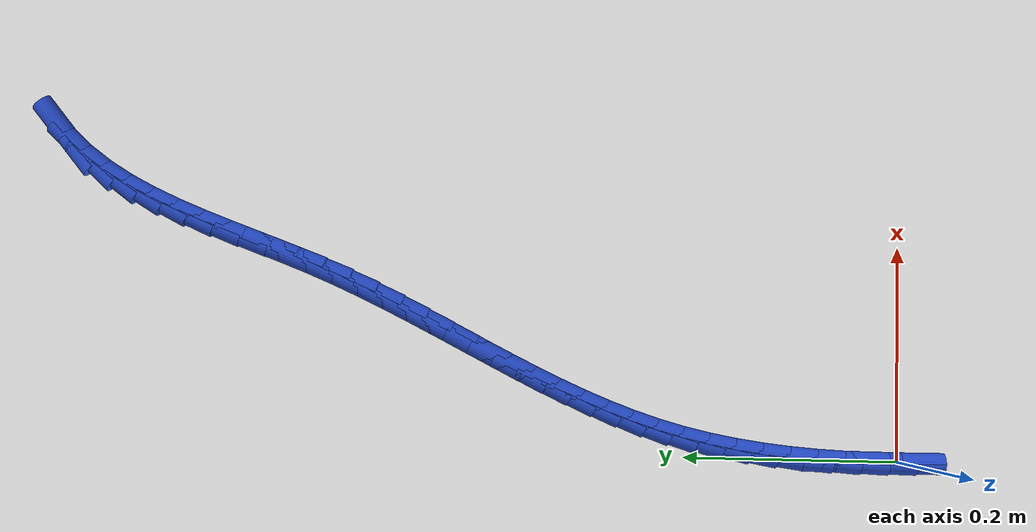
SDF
<sdf version="1.6">
 <world name="default">
  <model name="ground_plane">
   <static>1</static>
   <link name="link">
    <collision name="collision">
     <geometry><plane><normal>0 0 1</normal><size>100 100</size></plane></geometry>
     <surface><friction><ode><mu>100</mu><mu2>50</mu2></ode></friction></surface>
    </collision>
    <visual name="visual">
     <cast_shadows>0</cast_shadows>
     <geometry><plane><normal>0 0 1</normal><size>100 100</size></plane></geometry>
     <material>
      <script><uri>file://media/materials/scripts/gazebo.material</uri><name>Gazebo/WhiteGlow</name></script>
     </material>
    </visual>
   </link>
  </model>
  <model name="line">
   <link name="link_0">
    <pose>5.421010862427522e-18 1.3877787807814457e-17 0.01 0 1.57 -1.5659382603258258</pose>
    <collision name="collision">
     <geometry><cylinder><radius>0.01</radius><length>0.08</length></cylinder></geometry>
    </collision>
    <visual name="visual">
     <material>
      <script><name>Gazebo/Blue</name><uri>file://media/materials/scripts/gazebo.material</uri></script>
     </material>
     <geometry><cylinder><radius>0.01</radius><length>0.08</length></cylinder></geometry>
    </visual>
   </link>
   <link name="link_1">
    <pose>-0.00012448770193607386 0.02562474667447096 0.01 0 1.57 1.550838066038636</pose>
    <collision name="collision">
     <geometry><cylinder><radius>0.01</radius><length>0.08</length></cylinder></geometry>
    </collision>
    <visual name="visual">
     <material>
      <script><name>Gazebo/Blue</name><uri>file://media/materials/scripts/gazebo.material</uri></script>
     </material>
     <geometry><cylinder><radius>0.01</radius><length>0.08</length></cylinder></geometry>
    </visual>
   </link>
   <link name="link_2">
    <pose>0.0003884079028893683 0.051319746270860674 0.01 0 1.57 1.523754809734453</pose>
    <collision name="collision">
     <geometry><cylinder><radius>0.01</radius><length>0.08</length></cylinder></geometry>
    </collision>
    <visual name="visual">
     <material>
      <script><name>Gazebo/Blue</name><uri>file://media/materials/scripts/gazebo.material</uri></script>
     </material>
     <geometry><cylinder><radius>0.01</radius><length>0.08</length></cylinder></geometry>
    </visual>
   </link>
   <link name="link_3">
    <pose>0.0015977780576189502 0.07700935037230285 0.01 0 1.57 1.4942167240908684</pose>
    <collision name="collision">
     <geometry><cylinder><radius>0.01</radius><length>0.08</length></cylinder></geometry>
    </collision>
    <visual name="visual">
     <material>
      <script><name>Gazebo/Blue</name><uri>file://media/materials/scripts/gazebo.material</uri></script>
     </material>
     <geometry><cylinder><radius>0.01</radius><length>0.08</length></cylinder></geometry>
    </visual>
   </link>
   <link name="link_4">
    <pose>0.0035627140053952995 0.10261791056193133 0.01 0 1.57 1.4620176359149086</pose>
    <collision name="collision">
     <geometry><cylinder><radius>0.01</radius><length>0.08</length></cylinder></geometry>
    </collision>
    <visual name="visual">
     <material>
      <script><name>Gazebo/Blue</name><uri>file://media/materials/scripts/gazebo.material</uri></script>
     </material>
     <geometry><cylinder><radius>0.01</radius><length>0.08</length></cylinder></geometry>
    </visual>
   </link>
   <link name="link_5">
    <pose>0.006342306989361036 0.12806977842287975 0.01 0 1.57 1.4269354494937865</pose>
    <collision name="collision">
     <geometry><cylinder><radius>0.01</radius><length>0.08</length></cylinder></geometry>
    </collision>
    <visual name="visual">
     <material>
      <script><name>Gazebo/Blue</name><uri>file://media/materials/scripts/gazebo.material</uri></script>
     </material>
     <geometry><cylinder><radius>0.01</radius><length>0.08</length></cylinder></geometry>
    </visual>
   </link>
   <link name="link_6">
    <pose>0.009995648252658779 0.15328930553828193 0.01 0 1.57 1.3887362121927387</pose>
    <collision name="collision">
     <geometry><cylinder><radius>0.01</radius><length>0.08</length></cylinder></geometry>
    </collision>
    <visual name="visual">
     <material>
      <script><name>Gazebo/Blue</name><uri>file://media/materials/scripts/gazebo.material</uri></script>
     </material>
     <geometry><cylinder><radius>0.01</radius><length>0.08</length></cylinder></geometry>
    </visual>
   </link>
   <link name="link_7">
    <pose>0.014581829038431155 0.17820084349127158 0.01 0 1.57 1.34718060379681</pose>
    <collision name="collision">
     <geometry><cylinder><radius>0.01</radius><length>0.08</length></cylinder></geometry>
    </collision>
    <visual name="visual">
     <material>
      <script><name>Gazebo/Blue</name><uri>file://media/materials/scripts/gazebo.material</uri></script>
     </material>
     <geometry><cylinder><radius>0.01</radius><length>0.08</length></cylinder></geometry>
    </visual>
   </link>
   <link name="link_8">
    <pose>0.02015994058982078 0.20272874386498246 0.01 0 1.57 1.30220337523249</pose>
    <collision name="collision">
     <geometry><cylinder><radius>0.01</radius><length>0.08</length></cylinder></geometry>
    </collision>
    <visual name="visual">
     <material>
      <script><name>Gazebo/Blue</name><uri>file://media/materials/scripts/gazebo.material</uri></script>
     </material>
     <geometry><cylinder><radius>0.01</radius><length>0.08</length></cylinder></geometry>
    </visual>
   </link>
   <link name="link_9">
    <pose>0.02678553320749392 0.2268004582328669 0.01 0 1.57 1.2577323411462435</pose>
    <collision name="collision">
     <geometry><cylinder><radius>0.01</radius><length>0.08</length></cylinder></geometry>
    </collision>
    <visual name="visual">
     <material>
      <script><name>Gazebo/Blue</name><uri>file://media/materials/scripts/gazebo.material</uri></script>
     </material>
     <geometry><cylinder><radius>0.01</radius><length>0.08</length></cylinder></geometry>
    </visual>
   </link>
   <link name="link_10">
    <pose>0.03443036054978534 0.2504167996481787 0.01 0 1.57 1.2181870109696322</pose>
    <collision name="collision">
     <geometry><cylinder><radius>0.01</radius><length>0.08</length></cylinder></geometry>
    </collision>
    <visual name="visual">
     <material>
      <script><name>Gazebo/Blue</name><uri>file://media/materials/scripts/gazebo.material</uri></script>
     </material>
     <geometry><cylinder><radius>0.01</radius><length>0.08</length></cylinder></geometry>
    </visual>
   </link>
   <link name="link_11">
    <pose>0.042981050054630425 0.2736531066502133 0.01 0 1.57 1.184088666032764</pose>
    <collision name="collision">
     <geometry><cylinder><radius>0.01</radius><length>0.08</length></cylinder></geometry>
    </collision>
    <visual name="visual">
     <material>
      <script><name>Gazebo/Blue</name><uri>file://media/materials/scripts/gazebo.material</uri></script>
     </material>
     <geometry><cylinder><radius>0.01</radius><length>0.08</length></cylinder></geometry>
    </visual>
   </link>
   <link name="link_12">
    <pose>0.05232042228121659 0.29658805058791815 0.01 0 1.57 1.15564467206756</pose>
    <collision name="collision">
     <geometry><cylinder><radius>0.01</radius><length>0.08</length></cylinder></geometry>
    </collision>
    <visual name="visual">
     <material>
      <script><name>Gazebo/Blue</name><uri>file://media/materials/scripts/gazebo.material</uri></script>
     </material>
     <geometry><cylinder><radius>0.01</radius><length>0.08</length></cylinder></geometry>
    </visual>
   </link>
   <link name="link_13">
    <pose>0.06233129778873132 0.3193003028102408 0.01 0 1.57 1.1329560969378643</pose>
    <collision name="collision">
     <geometry><cylinder><radius>0.01</radius><length>0.08</length></cylinder></geometry>
    </collision>
    <visual name="visual">
     <material>
      <script><name>Gazebo/Blue</name><uri>file://media/materials/scripts/gazebo.material</uri></script>
     </material>
     <geometry><cylinder><radius>0.01</radius><length>0.08</length></cylinder></geometry>
    </visual>
   </link>
   <link name="link_14">
    <pose>0.072896497136362 0.3418685346661286 0.01 0 1.57 1.1160435405415503</pose>
    <collision name="collision">
     <geometry><cylinder><radius>0.01</radius><length>0.08</length></cylinder></geometry>
    </collision>
    <visual name="visual">
     <material>
      <script><name>Gazebo/Blue</name><uri>file://media/materials/scripts/gazebo.material</uri></script>
     </material>
     <geometry><cylinder><radius>0.01</radius><length>0.08</length></cylinder></geometry>
    </visual>
   </link>
   <link name="link_15">
    <pose>0.08389884088329615 0.3643714175045291 0.01 0 1.57 1.1048700795377384</pose>
    <collision name="collision">
     <geometry><cylinder><radius>0.01</radius><length>0.08</length></cylinder></geometry>
    </collision>
    <visual name="visual">
     <material>
      <script><name>Gazebo/Blue</name><uri>file://media/materials/scripts/gazebo.material</uri></script>
     </material>
     <geometry><cylinder><radius>0.01</radius><length>0.08</length></cylinder></geometry>
    </visual>
   </link>
   <link name="link_16">
    <pose>0.09522114958872116 0.3868876226743898 0.01 0 1.57 1.0993593445898155</pose>
    <collision name="collision">
     <geometry><cylinder><radius>0.01</radius><length>0.08</length></cylinder></geometry>
    </collision>
    <visual name="visual">
     <material>
      <script><name>Gazebo/Blue</name><uri>file://media/materials/scripts/gazebo.material</uri></script>
     </material>
     <geometry><cylinder><radius>0.01</radius><length>0.08</length></cylinder></geometry>
    </visual>
   </link>
   <link name="link_17">
    <pose>0.10674624381182446 0.4094958215246581 0.01 0 1.57 1.0994079437964333</pose>
    <collision name="collision">
     <geometry><cylinder><radius>0.01</radius><length>0.08</length></cylinder></geometry>
    </collision>
    <visual name="visual">
     <material>
      <script><name>Gazebo/Blue</name><uri>file://media/materials/scripts/gazebo.material</uri></script>
     </material>
     <geometry><cylinder><radius>0.01</radius><length>0.08</length></cylinder></geometry>
    </visual>
   </link>
   <link name="link_18">
    <pose>0.11835694411179348 0.4322746854042813 0.01 0 1.57 1.1048922381688164</pose>
    <collision name="collision">
     <geometry><cylinder><radius>0.01</radius><length>0.08</length></cylinder></geometry>
    </collision>
    <visual name="visual">
     <material>
      <script><name>Gazebo/Blue</name><uri>file://media/materials/scripts/gazebo.material</uri></script>
     </material>
     <geometry><cylinder><radius>0.01</radius><length>0.08</length></cylinder></geometry>
    </visual>
   </link>
   <link name="link_19">
    <pose>0.12993607104781574 0.45530288566220734 0.01 0 1.57 1.1156699416593707</pose>
    <collision name="collision">
     <geometry><cylinder><radius>0.01</radius><length>0.08</length></cylinder></geometry>
    </collision>
    <visual name="visual">
     <material>
      <script><name>Gazebo/Blue</name><uri>file://media/materials/scripts/gazebo.material</uri></script>
     </material>
     <geometry><cylinder><radius>0.01</radius><length>0.08</length></cylinder></geometry>
    </visual>
   </link>
   <link name="link_20">
    <pose>0.14136644517907868 0.4786590936473834 0.01 0 1.57 1.1315772874365169</pose>
    <collision name="collision">
     <geometry><cylinder><radius>0.01</radius><length>0.08</length></cylinder></geometry>
    </collision>
    <visual name="visual">
     <material>
      <script><name>Gazebo/Blue</name><uri>file://media/materials/scripts/gazebo.material</uri></script>
     </material>
     <geometry><cylinder><radius>0.01</radius><length>0.08</length></cylinder></geometry>
    </visual>
   </link>
   <link name="link_21">
    <pose>0.15253088706476967 0.502421980708757 0.01 0 1.57 1.1524226938475504</pose>
    <collision name="collision">
     <geometry><cylinder><radius>0.01</radius><length>0.08</length></cylinder></geometry>
    </collision>
    <visual name="visual">
     <material>
      <script><name>Gazebo/Blue</name><uri>file://media/materials/scripts/gazebo.material</uri></script>
     </material>
     <geometry><cylinder><radius>0.01</radius><length>0.08</length></cylinder></geometry>
    </visual>
   </link>
   <link name="link_22">
    <pose>0.16331221726407616 0.5266702181952754 0.01 0 1.57 1.1779779294163575</pose>
    <collision name="collision">
     <geometry><cylinder><radius>0.01</radius><length>0.08</length></cylinder></geometry>
    </collision>
    <visual name="visual">
     <material>
      <script><name>Gazebo/Blue</name><uri>file://media/materials/scripts/gazebo.material</uri></script>
     </material>
     <geometry><cylinder><radius>0.01</radius><length>0.08</length></cylinder></geometry>
    </visual>
   </link>
   <link name="link_23">
    <pose>0.1735932590599459 0.5514824747864997 0.01 0 1.57 1.204589698787398</pose>
    <collision name="collision">
     <geometry><cylinder><radius>0.01</radius><length>0.08</length></cylinder></geometry>
    </collision>
    <visual name="visual">
     <material>
      <script><name>Gazebo/Blue</name><uri>file://media/materials/scripts/gazebo.material</uri></script>
     </material>
     <geometry><cylinder><radius>0.01</radius><length>0.08</length></cylinder></geometry>
    </visual>
   </link>
   <link name="link_24">
    <pose>0.18332845318040278 0.576867231397506 0.01 0 1.57 1.2202474084535286</pose>
    <collision name="collision">
     <geometry><cylinder><radius>0.01</radius><length>0.08</length></cylinder></geometry>
    </collision>
    <visual name="visual">
     <material>
      <script><name>Gazebo/Blue</name><uri>file://media/materials/scripts/gazebo.material</uri></script>
     </material>
     <geometry><cylinder><radius>0.01</radius><length>0.08</length></cylinder></geometry>
    </visual>
   </link>
   <link name="link_25">
    <pose>0.1927303491308902 0.6025800127249246 0.01 0 1.57 1.2227287700935614</pose>
    <collision name="collision">
     <geometry><cylinder><radius>0.01</radius><length>0.08</length></cylinder></geometry>
    </collision>
    <visual name="visual">
     <material>
      <script><name>Gazebo/Blue</name><uri>file://media/materials/scripts/gazebo.material</uri></script>
     </material>
     <geometry><cylinder><radius>0.01</radius><length>0.08</length></cylinder></geometry>
    </visual>
   </link>
   <link name="link_26">
    <pose>0.20206962284783564 0.6283193773973579 0.01 0 1.57 1.2120897841946021</pose>
    <collision name="collision">
     <geometry><cylinder><radius>0.01</radius><length>0.08</length></cylinder></geometry>
    </collision>
    <visual name="visual">
     <material>
      <script><name>Gazebo/Blue</name><uri>file://media/materials/scripts/gazebo.material</uri></script>
     </material>
     <geometry><cylinder><radius>0.01</radius><length>0.08</length></cylinder></geometry>
    </visual>
   </link>
   <link name="link_27">
    <pose>0.2116169502676666 0.653783884043408 0.01 0 1.57 1.1878409056218606</pose>
    <collision name="collision">
     <geometry><cylinder><radius>0.01</radius><length>0.08</length></cylinder></geometry>
    </collision>
    <visual name="visual">
     <material>
      <script><name>Gazebo/Blue</name><uri>file://media/materials/scripts/gazebo.material</uri></script>
     </material>
     <geometry><cylinder><radius>0.01</radius><length>0.08</length></cylinder></geometry>
    </visual>
   </link>
   <link name="link_28">
    <pose>0.22164300732681036 0.6786720912916773 0.01 0 1.57 1.1489558398082087</pose>
    <collision name="collision">
     <geometry><cylinder><radius>0.01</radius><length>0.08</length></cylinder></geometry>
    </collision>
    <visual name="visual">
     <material>
      <script><name>Gazebo/Blue</name><uri>file://media/materials/scripts/gazebo.material</uri></script>
     </material>
     <geometry><cylinder><radius>0.01</radius><length>0.08</length></cylinder></geometry>
    </visual>
   </link>
   <link name="link_29">
    <pose>0.23241846996169443 0.7026825577707675 0.01 0 1.57 1.0939258736134703</pose>
    <collision name="collision">
     <geometry><cylinder><radius>0.01</radius><length>0.08</length></cylinder></geometry>
    </collision>
    <visual name="visual">
     <material>
      <script><name>Gazebo/Blue</name><uri>file://media/materials/scripts/gazebo.material</uri></script>
     </material>
     <geometry><cylinder><radius>0.01</radius><length>0.08</length></cylinder></geometry>
    </visual>
   </link>
   <link name="link_30">
    <pose>0.24421401410874602 0.7255138421092808 0.01 0 1.57 1.0209290929186816</pose>
    <collision name="collision">
     <geometry><cylinder><radius>0.01</radius><length>0.08</length></cylinder></geometry>
    </collision>
    <visual name="visual">
     <material>
      <script><name>Gazebo/Blue</name><uri>file://media/materials/scripts/gazebo.material</uri></script>
     </material>
     <geometry><cylinder><radius>0.01</radius><length>0.08</length></cylinder></geometry>
    </visual>
   </link>
   <link name="link_31">
    <pose>0.2573003157043927 0.7468645029358196 0.01 0 1.57 0.9282349180417167</pose>
    <collision name="collision">
     <geometry><cylinder><radius>0.01</radius><length>0.08</length></cylinder></geometry>
    </collision>
    <visual name="visual">
     <material>
      <script><name>Gazebo/Blue</name><uri>file://media/materials/scripts/gazebo.material</uri></script>
     </material>
     <geometry><cylinder><radius>0.01</radius><length>0.08</length></cylinder></geometry>
    </visual>
   </link>
   <link name="link_32">
    <pose>0.2719480506850618 0.7664330988789856 0.01 0 1.57 0.814986091452604</pose>
    <collision name="collision">
     <geometry><cylinder><radius>0.01</radius><length>0.08</length></cylinder></geometry>
    </collision>
    <visual name="visual">
     <material>
      <script><name>Gazebo/Blue</name><uri>file://media/materials/scripts/gazebo.material</uri></script>
     </material>
     <geometry><cylinder><radius>0.01</radius><length>0.08</length></cylinder></geometry>
    </visual>
   </link>
   <link name="link_33">
    <pose>0.2884278949871807 0.7839181885673814 0.01 0 1.57 0.6823734579431204</pose>
    <collision name="collision">
     <geometry><cylinder><radius>0.01</radius><length>0.08</length></cylinder></geometry>
    </collision>
    <visual name="visual">
     <material>
      <script><name>Gazebo/Blue</name><uri>file://media/materials/scripts/gazebo.material</uri></script>
     </material>
     <geometry><cylinder><radius>0.01</radius><length>0.08</length></cylinder></geometry>
    </visual>
   </link>
   <link name="link_290">
    <pose>1.1275702593849246e-17 -8.326672684688674e-17 0.01 0 1.57 -1.5656298788403855</pose>
    <collision name="collision">
     <geometry><cylinder><radius>0.01</radius><length>0.08</length></cylinder></geometry>
    </collision>
    <visual name="visual">
     <material>
      <script><name>Gazebo/Blue</name><uri>file://media/materials/scripts/gazebo.material</uri></script>
     </material>
     <geometry><cylinder><radius>0.01</radius><length>0.08</length></cylinder></geometry>
    </visual>
   </link>
   <link name="link_291">
    <pose>-0.00013247871721887034 0.02564189936059579 0.01 0 1.57 1.553096943902162</pose>
    <collision name="collision">
     <geometry><cylinder><radius>0.01</radius><length>0.08</length></cylinder></geometry>
    </collision>
    <visual name="visual">
     <material>
      <script><name>Gazebo/Blue</name><uri>file://media/materials/scripts/gazebo.material</uri></script>
     </material>
     <geometry><cylinder><radius>0.01</radius><length>0.08</length></cylinder></geometry>
    </visual>
   </link>
   <link name="link_292">
    <pose>0.000324479780627 0.05145696775986623 0.01 0 1.57 1.564490563085619</pose>
    <collision name="collision">
     <geometry><cylinder><radius>0.01</radius><length>0.08</length></cylinder></geometry>
    </collision>
    <visual name="visual">
     <material>
      <script><name>Gazebo/Blue</name><uri>file://media/materials/scripts/gazebo.material</uri></script>
     </material>
     <geometry><cylinder><radius>0.01</radius><length>0.08</length></cylinder></geometry>
    </visual>
   </link>
  </model>
 </world>
</sdf>
